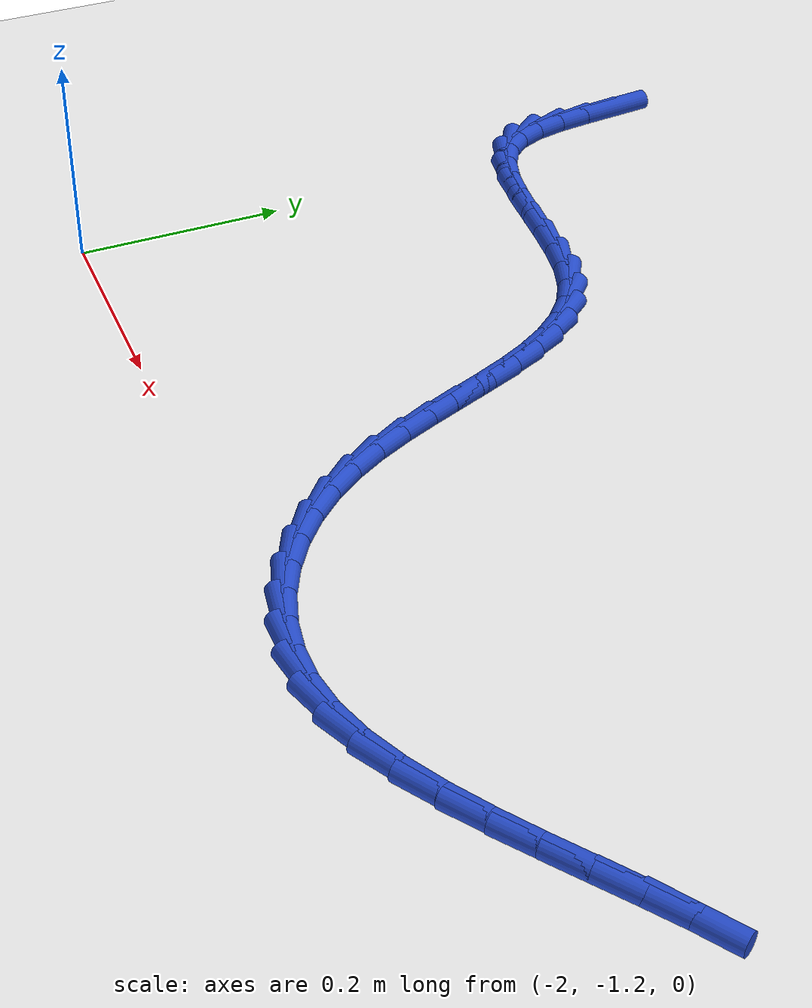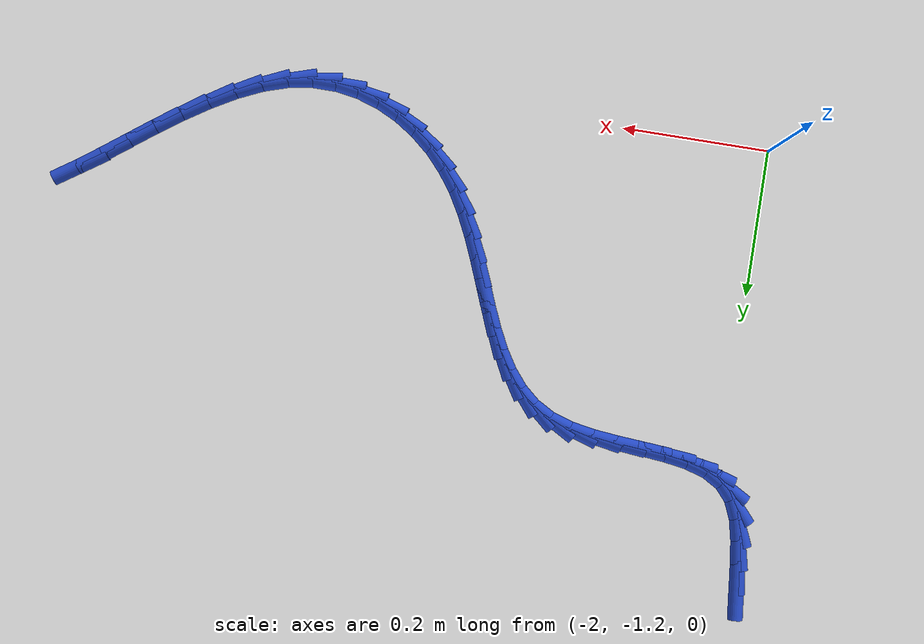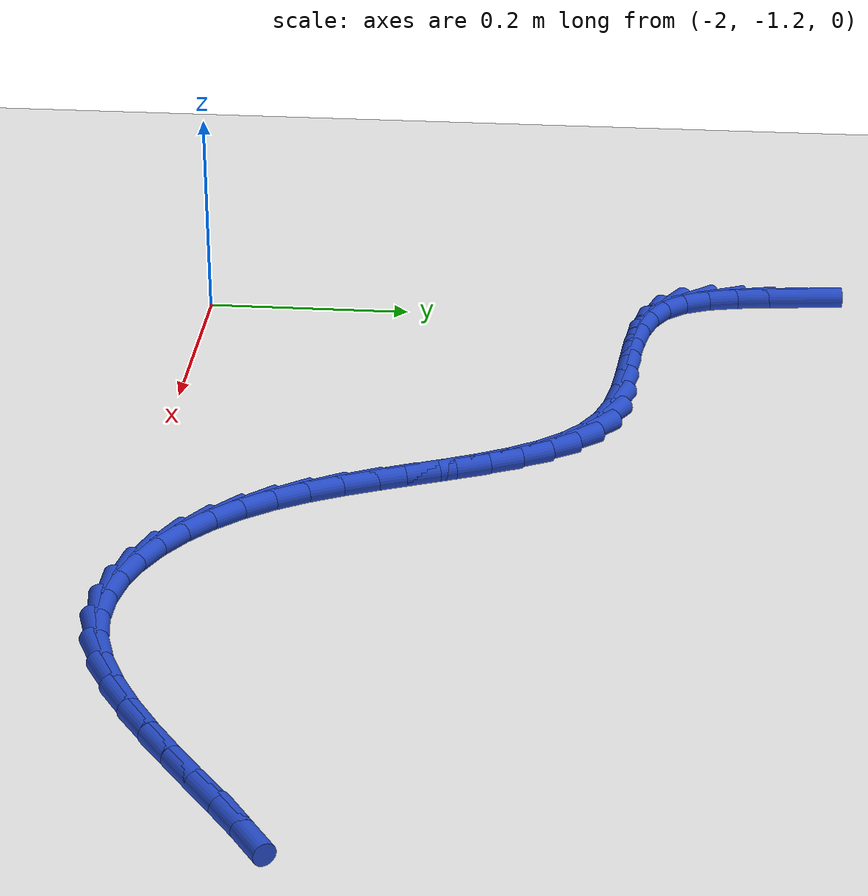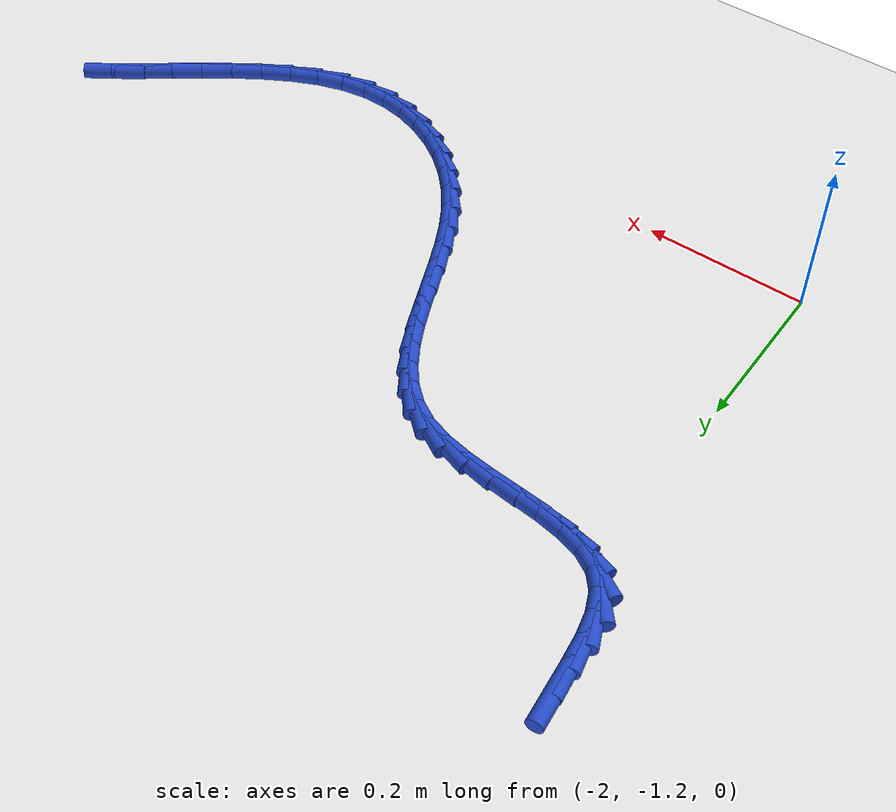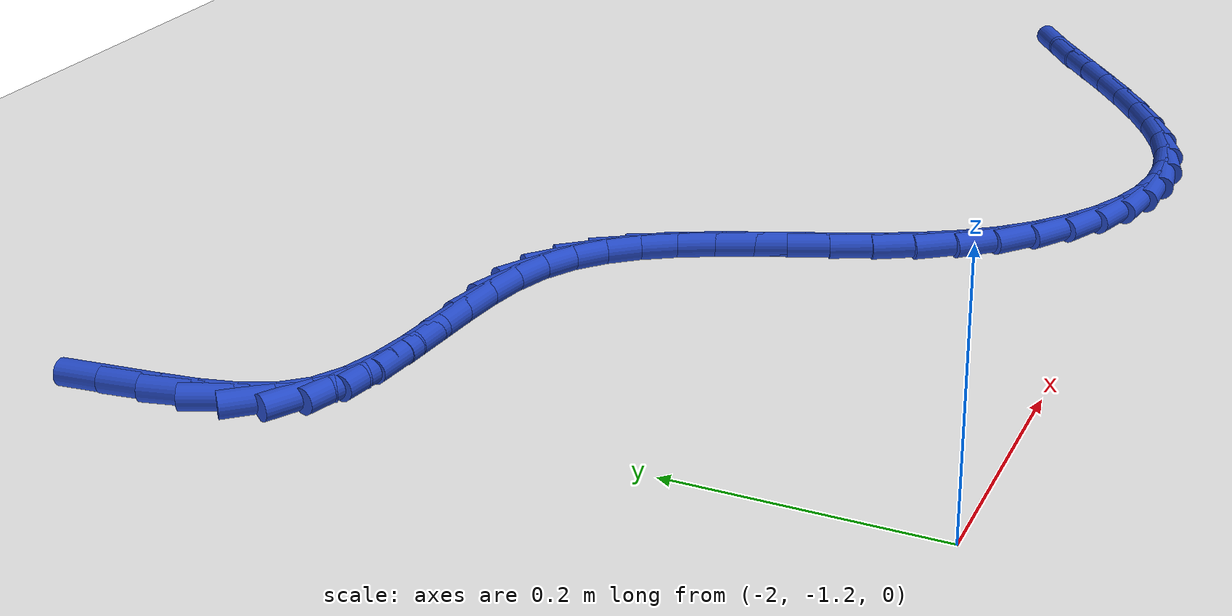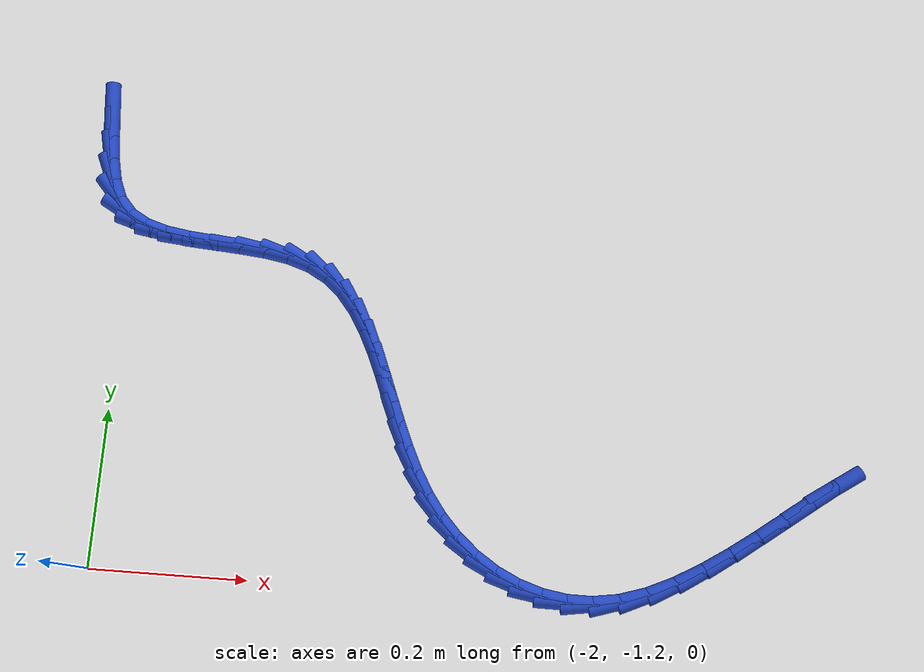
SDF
<sdf version="1.6">
 <world name="default">
  <model name="ground_plane">
   <static>1</static>
   <link name="link">
    <collision name="collision">
     <geometry><plane><normal>0 0 1</normal><size>100 100</size></plane></geometry>
     <surface><friction><ode><mu>100</mu><mu2>50</mu2></ode></friction></surface>
    </collision>
    <visual name="visual">
     <cast_shadows>0</cast_shadows>
     <geometry><plane><normal>0 0 1</normal><size>100 100</size></plane></geometry>
     <material>
      <script><uri>file://media/materials/scripts/gazebo.material</uri><name>Gazebo/WhiteGlow</name></script>
     </material>
    </visual>
   </link>
  </model>
  <model name="line">
   <link name="link_145">
    <pose>-2.0440664429187976 -0.6051107859606597 0.01 0 1.57 -1.4711831754574314</pose>
    <collision name="collision">
     <geometry><cylinder><radius>0.01</radius><length>0.08</length></cylinder></geometry>
    </collision>
    <visual name="visual">
     <material>
      <script><name>Gazebo/Blue</name><uri>file://media/materials/scripts/gazebo.material</uri></script>
     </material>
     <geometry><cylinder><radius>0.01</radius><length>0.08</length></cylinder></geometry>
    </visual>
   </link>
   <link name="link_146">
    <pose>-2.040724526774477 -0.6385486913073266 0.01 0 1.57 -1.4446692146444986</pose>
    <collision name="collision">
     <geometry><cylinder><radius>0.01</radius><length>0.08</length></cylinder></geometry>
    </collision>
    <visual name="visual">
     <material>
      <script><name>Gazebo/Blue</name><uri>file://media/materials/scripts/gazebo.material</uri></script>
     </material>
     <geometry><cylinder><radius>0.01</radius><length>0.08</length></cylinder></geometry>
    </visual>
   </link>
   <link name="link_147">
    <pose>-2.0366663396017075 -0.6705532696092178 0.01 0 1.57 -1.3515240249485478</pose>
    <collision name="collision">
     <geometry><cylinder><radius>0.01</radius><length>0.08</length></cylinder></geometry>
    </collision>
    <visual name="visual">
     <material>
      <script><name>Gazebo/Blue</name><uri>file://media/materials/scripts/gazebo.material</uri></script>
     </material>
     <geometry><cylinder><radius>0.01</radius><length>0.08</length></cylinder></geometry>
    </visual>
   </link>
   <link name="link_148">
    <pose>-2.0301826931210663 -0.6996467749841982 0.01 0 1.57 -1.1648595621627673</pose>
    <collision name="collision">
     <geometry><cylinder><radius>0.01</radius><length>0.08</length></cylinder></geometry>
    </collision>
    <visual name="visual">
     <material>
      <script><name>Gazebo/Blue</name><uri>file://media/materials/scripts/gazebo.material</uri></script>
     </material>
     <geometry><cylinder><radius>0.01</radius><length>0.08</length></cylinder></geometry>
    </visual>
   </link>
   <link name="link_149">
    <pose>-2.0195643990531273 -0.7243514615501329 0.01 0 1.57 -0.855051667119525</pose>
    <collision name="collision">
     <geometry><cylinder><radius>0.01</radius><length>0.08</length></cylinder></geometry>
    </collision>
    <visual name="visual">
     <material>
      <script><name>Gazebo/Blue</name><uri>file://media/materials/scripts/gazebo.material</uri></script>
     </material>
     <geometry><cylinder><radius>0.01</radius><length>0.08</length></cylinder></geometry>
    </visual>
   </link>
   <link name="link_150">
    <pose>-2.003146832519911 -0.7432316222642503 0.01 0 1.57 -0.5197034900409482</pose>
    <collision name="collision">
     <geometry><cylinder><radius>0.01</radius><length>0.08</length></cylinder></geometry>
    </collision>
    <visual name="visual">
     <material>
      <script><name>Gazebo/Blue</name><uri>file://media/materials/scripts/gazebo.material</uri></script>
     </material>
     <geometry><cylinder><radius>0.01</radius><length>0.08</length></cylinder></geometry>
    </visual>
   </link>
   <link name="link_151">
    <pose>-1.9806142718592905 -0.756124036558606 0.01 0 1.57 -0.2911077114056991</pose>
    <collision name="collision">
     <geometry><cylinder><radius>0.01</radius><length>0.08</length></cylinder></geometry>
    </collision>
    <visual name="visual">
     <material>
      <script><name>Gazebo/Blue</name><uri>file://media/materials/scripts/gazebo.material</uri></script>
     </material>
     <geometry><cylinder><radius>0.01</radius><length>0.08</length></cylinder></geometry>
    </visual>
   </link>
   <link name="link_152">
    <pose>-1.9532089723063728 -0.7643351997844707 0.01 0 1.57 -0.15759299802728446</pose>
    <collision name="collision">
     <geometry><cylinder><radius>0.01</radius><length>0.08</length></cylinder></geometry>
    </collision>
    <visual name="visual">
     <material>
      <script><name>Gazebo/Blue</name><uri>file://media/materials/scripts/gazebo.material</uri></script>
     </material>
     <geometry><cylinder><radius>0.01</radius><length>0.08</length></cylinder></geometry>
    </visual>
   </link>
   <link name="link_153">
    <pose>-1.9222598395936916 -0.7692533489516087 0.01 0 1.57 -0.0906137588480464</pose>
    <collision name="collision">
     <geometry><cylinder><radius>0.01</radius><length>0.08</length></cylinder></geometry>
    </collision>
    <visual name="visual">
     <material>
      <script><name>Gazebo/Blue</name><uri>file://media/materials/scripts/gazebo.material</uri></script>
     </material>
     <geometry><cylinder><radius>0.01</radius><length>0.08</length></cylinder></geometry>
    </visual>
   </link>
   <link name="link_154">
    <pose>-1.889095779453779 -0.7722667210697828 0.01 0 1.57 -0.07319721857196934</pose>
    <collision name="collision">
     <geometry><cylinder><radius>0.01</radius><length>0.08</length></cylinder></geometry>
    </collision>
    <visual name="visual">
     <material>
      <script><name>Gazebo/Blue</name><uri>file://media/materials/scripts/gazebo.material</uri></script>
     </material>
     <geometry><cylinder><radius>0.01</radius><length>0.08</length></cylinder></geometry>
    </visual>
   </link>
   <link name="link_155">
    <pose>-1.8550456976191674 -0.7747635531487569 0.01 0 1.57 -0.09989871547895696</pose>
    <collision name="collision">
     <geometry><cylinder><radius>0.01</radius><length>0.08</length></cylinder></geometry>
    </collision>
    <visual name="visual">
     <material>
      <script><name>Gazebo/Blue</name><uri>file://media/materials/scripts/gazebo.material</uri></script>
     </material>
     <geometry><cylinder><radius>0.01</radius><length>0.08</length></cylinder></geometry>
    </visual>
   </link>
   <link name="link_156">
    <pose>-1.8214384998223905 -0.7781320821982947 0.01 0 1.57 -0.17499051374921393</pose>
    <collision name="collision">
     <geometry><cylinder><radius>0.01</radius><length>0.08</length></cylinder></geometry>
    </collision>
    <visual name="visual">
     <material>
      <script><name>Gazebo/Blue</name><uri>file://media/materials/scripts/gazebo.material</uri></script>
     </material>
     <geometry><cylinder><radius>0.01</radius><length>0.08</length></cylinder></geometry>
    </visual>
   </link>
   <link name="link_157">
    <pose>-1.7896030917959795 -0.7837605452281595 0.01 0 1.57 -0.31227330798010927</pose>
    <collision name="collision">
     <geometry><cylinder><radius>0.01</radius><length>0.08</length></cylinder></geometry>
    </collision>
    <visual name="visual">
     <material>
      <script><name>Gazebo/Blue</name><uri>file://media/materials/scripts/gazebo.material</uri></script>
     </material>
     <geometry><cylinder><radius>0.01</radius><length>0.08</length></cylinder></geometry>
    </visual>
   </link>
   <link name="link_158">
    <pose>-1.7608683518557324 -0.7930371510729478 0.01 0 1.57 -0.5138665452206627</pose>
    <collision name="collision">
     <geometry><cylinder><radius>0.01</radius><length>0.08</length></cylinder></geometry>
    </collision>
    <visual name="visual">
     <material>
      <script><name>Gazebo/Blue</name><uri>file://media/materials/scripts/gazebo.material</uri></script>
     </material>
     <geometry><cylinder><radius>0.01</radius><length>0.08</length></cylinder></geometry>
    </visual>
   </link>
   <link name="link_159">
    <pose>-1.7361900766721106 -0.806966706320459 0.01 0 1.57 -0.7158099889967569</pose>
    <collision name="collision">
     <geometry><cylinder><radius>0.01</radius><length>0.08</length></cylinder></geometry>
    </collision>
    <visual name="visual">
     <material>
      <script><name>Gazebo/Blue</name><uri>file://media/materials/scripts/gazebo.material</uri></script>
     </material>
     <geometry><cylinder><radius>0.01</radius><length>0.08</length></cylinder></geometry>
    </visual>
   </link>
   <link name="link_160">
    <pose>-1.7152147931436519 -0.8252085293027943 0.01 0 1.57 -0.8856257170749956</pose>
    <collision name="collision">
     <geometry><cylinder><radius>0.01</radius><length>0.08</length></cylinder></geometry>
    </collision>
    <visual name="visual">
     <material>
      <script><name>Gazebo/Blue</name><uri>file://media/materials/scripts/gazebo.material</uri></script>
     </material>
     <geometry><cylinder><radius>0.01</radius><length>0.08</length></cylinder></geometry>
    </visual>
   </link>
   <link name="link_161">
    <pose>-1.6973019809127088 -0.84712695047384 0.01 0 1.57 -1.0153358224507827</pose>
    <collision name="collision">
     <geometry><cylinder><radius>0.01</radius><length>0.08</length></cylinder></geometry>
    </collision>
    <visual name="visual">
     <material>
      <script><name>Gazebo/Blue</name><uri>file://media/materials/scripts/gazebo.material</uri></script>
     </material>
     <geometry><cylinder><radius>0.01</radius><length>0.08</length></cylinder></geometry>
    </visual>
   </link>
   <link name="link_162">
    <pose>-1.6818111196216317 -0.8720863002874808 0.01 0 1.57 -1.1063560005590152</pose>
    <collision name="collision">
     <geometry><cylinder><radius>0.01</radius><length>0.08</length></cylinder></geometry>
    </collision>
    <visual name="visual">
     <material>
      <script><name>Gazebo/Blue</name><uri>file://media/materials/scripts/gazebo.material</uri></script>
     </material>
     <geometry><cylinder><radius>0.01</radius><length>0.08</length></cylinder></geometry>
    </visual>
   </link>
   <link name="link_163">
    <pose>-1.6681016889127716 -0.8994509091976026 0.01 0 1.57 -1.1635165456020855</pose>
    <collision name="collision">
     <geometry><cylinder><radius>0.01</radius><length>0.08</length></cylinder></geometry>
    </collision>
    <visual name="visual">
     <material>
      <script><name>Gazebo/Blue</name><uri>file://media/materials/scripts/gazebo.material</uri></script>
     </material>
     <geometry><cylinder><radius>0.01</radius><length>0.08</length></cylinder></geometry>
    </visual>
   </link>
   <link name="link_164">
    <pose>-1.6555331684284809 -0.9285851076580911 0.01 0 1.57 -1.1914045340716606</pose>
    <collision name="collision">
     <geometry><cylinder><radius>0.01</radius><length>0.08</length></cylinder></geometry>
    </collision>
    <visual name="visual">
     <material>
      <script><name>Gazebo/Blue</name><uri>file://media/materials/scripts/gazebo.material</uri></script>
     </material>
     <geometry><cylinder><radius>0.01</radius><length>0.08</length></cylinder></geometry>
    </visual>
   </link>
   <link name="link_165">
    <pose>-1.643465037811109 -0.958853226122831 0.01 0 1.57 -1.1930469514371933</pose>
    <collision name="collision">
     <geometry><cylinder><radius>0.01</radius><length>0.08</length></cylinder></geometry>
    </collision>
    <visual name="visual">
     <material>
      <script><name>Gazebo/Blue</name><uri>file://media/materials/scripts/gazebo.material</uri></script>
     </material>
     <geometry><cylinder><radius>0.01</radius><length>0.08</length></cylinder></geometry>
    </visual>
   </link>
   <link name="link_166">
    <pose>-1.6312567767030088 -0.9896195950457083 0.01 0 1.57 -1.1697110822991574</pose>
    <collision name="collision">
     <geometry><cylinder><radius>0.01</radius><length>0.08</length></cylinder></geometry>
    </collision>
    <visual name="visual">
     <material>
      <script><name>Gazebo/Blue</name><uri>file://media/materials/scripts/gazebo.material</uri></script>
     </material>
     <geometry><cylinder><radius>0.01</radius><length>0.08</length></cylinder></geometry>
    </visual>
   </link>
   <link name="link_167">
    <pose>-1.6182678647465303 -1.0202485448806085 0.01 0 1.57 -1.121120685588752</pose>
    <collision name="collision">
     <geometry><cylinder><radius>0.01</radius><length>0.08</length></cylinder></geometry>
    </collision>
    <visual name="visual">
     <material>
      <script><name>Gazebo/Blue</name><uri>file://media/materials/scripts/gazebo.material</uri></script>
     </material>
     <geometry><cylinder><radius>0.01</radius><length>0.08</length></cylinder></geometry>
    </visual>
   </link>
   <link name="link_168">
    <pose>-1.6038577815840251 -1.0501044060814169 0.01 0 1.57 -1.0459373882455891</pose>
    <collision name="collision">
     <geometry><cylinder><radius>0.01</radius><length>0.08</length></cylinder></geometry>
    </collision>
    <visual name="visual">
     <material>
      <script><name>Gazebo/Blue</name><uri>file://media/materials/scripts/gazebo.material</uri></script>
     </material>
     <geometry><cylinder><radius>0.01</radius><length>0.08</length></cylinder></geometry>
    </visual>
   </link>
   <link name="link_169">
    <pose>-1.5873860068578438 -1.0785515091020188 0.01 0 1.57 -0.9436249586429989</pose>
    <collision name="collision">
     <geometry><cylinder><radius>0.01</radius><length>0.08</length></cylinder></geometry>
    </collision>
    <visual name="visual">
     <material>
      <script><name>Gazebo/Blue</name><uri>file://media/materials/scripts/gazebo.material</uri></script>
     </material>
     <geometry><cylinder><radius>0.01</radius><length>0.08</length></cylinder></geometry>
    </visual>
   </link>
   <link name="link_170">
    <pose>-1.568243754590191 -1.1049622191065958 0.01 0 1.57 -0.8278197202941777</pose>
    <collision name="collision">
     <geometry><cylinder><radius>0.01</radius><length>0.08</length></cylinder></geometry>
    </collision>
    <visual name="visual">
     <material>
      <script><name>Gazebo/Blue</name><uri>file://media/materials/scripts/gazebo.material</uri></script>
     </material>
     <geometry><cylinder><radius>0.01</radius><length>0.08</length></cylinder></geometry>
    </visual>
   </link>
   <link name="link_171">
    <pose>-1.5463160849542557 -1.1288339363402808 0.01 0 1.57 -0.7082044843063268</pose>
    <collision name="collision">
     <geometry><cylinder><radius>0.01</radius><length>0.08</length></cylinder></geometry>
    </collision>
    <visual name="visual">
     <material>
      <script><name>Gazebo/Blue</name><uri>file://media/materials/scripts/gazebo.material</uri></script>
     </material>
     <geometry><cylinder><radius>0.01</radius><length>0.08</length></cylinder></geometry>
    </visual>
   </link>
   <link name="link_172">
    <pose>-1.5218781830312857 -1.1497628353311775 0.01 0 1.57 -0.583054577492486</pose>
    <collision name="collision">
     <geometry><cylinder><radius>0.01</radius><length>0.08</length></cylinder></geometry>
    </collision>
    <visual name="visual">
     <material>
      <script><name>Gazebo/Blue</name><uri>file://media/materials/scripts/gazebo.material</uri></script>
     </material>
     <geometry><cylinder><radius>0.01</radius><length>0.08</length></cylinder></geometry>
    </visual>
   </link>
   <link name="link_173">
    <pose>-1.4952158619259666 -1.1673477814773436 0.01 0 1.57 -0.4506811683502191</pose>
    <collision name="collision">
     <geometry><cylinder><radius>0.01</radius><length>0.08</length></cylinder></geometry>
    </collision>
    <visual name="visual">
     <material>
      <script><name>Gazebo/Blue</name><uri>file://media/materials/scripts/gazebo.material</uri></script>
     </material>
     <geometry><cylinder><radius>0.01</radius><length>0.08</length></cylinder></geometry>
    </visual>
   </link>
   <link name="link_174">
    <pose>-1.4666149347429849 -1.1811876401768395 0.01 0 1.57 -0.31007608036072054</pose>
    <collision name="collision">
     <geometry><cylinder><radius>0.01</radius><length>0.08</length></cylinder></geometry>
    </collision>
    <visual name="visual">
     <material>
      <script><name>Gazebo/Blue</name><uri>file://media/materials/scripts/gazebo.material</uri></script>
     </material>
     <geometry><cylinder><radius>0.01</radius><length>0.08</length></cylinder></geometry>
    </visual>
   </link>
   <link name="link_175">
    <pose>-1.436361214587026 -1.190881276827724 0.01 0 1.57 -0.16133580426411429</pose>
    <collision name="collision">
     <geometry><cylinder><radius>0.01</radius><length>0.08</length></cylinder></geometry>
    </collision>
    <visual name="visual">
     <material>
      <script><name>Gazebo/Blue</name><uri>file://media/materials/scripts/gazebo.material</uri></script>
     </material>
     <geometry><cylinder><radius>0.01</radius><length>0.08</length></cylinder></geometry>
    </visual>
   </link>
   <link name="link_176">
    <pose>-1.404740514562776 -1.1960275568280565 0.01 0 1.57 -0.006048166527964421</pose>
    <collision name="collision">
     <geometry><cylinder><radius>0.01</radius><length>0.08</length></cylinder></geometry>
    </collision>
    <visual name="visual">
     <material>
      <script><name>Gazebo/Blue</name><uri>file://media/materials/scripts/gazebo.material</uri></script>
     </material>
     <geometry><cylinder><radius>0.01</radius><length>0.08</length></cylinder></geometry>
    </visual>
   </link>
   <link name="link_177">
    <pose>-1.3720386477749196 -1.1962253455758958 0.01 0 1.57 0.15260320904835697</pose>
    <collision name="collision">
     <geometry><cylinder><radius>0.01</radius><length>0.08</length></cylinder></geometry>
    </collision>
    <visual name="visual">
     <material>
      <script><name>Gazebo/Blue</name><uri>file://media/materials/scripts/gazebo.material</uri></script>
     </material>
     <geometry><cylinder><radius>0.01</radius><length>0.08</length></cylinder></geometry>
    </visual>
   </link>
   <link name="link_178">
    <pose>-1.3385414273281437 -1.191073508469302 0.01 0 1.57 0.30643836537034636</pose>
    <collision name="collision">
     <geometry><cylinder><radius>0.01</radius><length>0.08</length></cylinder></geometry>
    </collision>
    <visual name="visual">
     <material>
      <script><name>Gazebo/Blue</name><uri>file://media/materials/scripts/gazebo.material</uri></script>
     </material>
     <geometry><cylinder><radius>0.01</radius><length>0.08</length></cylinder></geometry>
    </visual>
   </link>
   <link name="link_179">
    <pose>-1.3045364324391737 -1.180314162453006 0.01 0 1.57 0.42904479322002015</pose>
    <collision name="collision">
     <geometry><cylinder><radius>0.01</radius><length>0.08</length></cylinder></geometry>
    </collision>
    <visual name="visual">
     <material>
      <script><name>Gazebo/Blue</name><uri>file://media/materials/scripts/gazebo.material</uri></script>
     </material>
     <geometry><cylinder><radius>0.01</radius><length>0.08</length></cylinder></geometry>
    </visual>
   </link>
   <link name="link_180">
    <pose>-1.2703232429690552 -1.1646628116751407 0.01 0 1.57 0.5175436508867145</pose>
    <collision name="collision">
     <geometry><cylinder><radius>0.01</radius><length>0.08</length></cylinder></geometry>
    </collision>
    <visual name="visual">
     <material>
      <script><name>Gazebo/Blue</name><uri>file://media/materials/scripts/gazebo.material</uri></script>
     </material>
     <geometry><cylinder><radius>0.01</radius><length>0.08</length></cylinder></geometry>
    </visual>
   </link>
   <link name="link_181">
    <pose>-1.2362064317621166 -1.1452399473750419 0.01 0 1.57 0.5796471660618034</pose>
    <collision name="collision">
     <geometry><cylinder><radius>0.01</radius><length>0.08</length></cylinder></geometry>
    </collision>
    <visual name="visual">
     <material>
      <script><name>Gazebo/Blue</name><uri>file://media/materials/scripts/gazebo.material</uri></script>
     </material>
     <geometry><cylinder><radius>0.01</radius><length>0.08</length></cylinder></geometry>
    </visual>
   </link>
   <link name="link_182">
    <pose>-1.2024905880360337 -1.1231673888546112 0.01 0 1.57 0.6206837745524185</pose>
    <collision name="collision">
     <geometry><cylinder><radius>0.01</radius><length>0.08</length></cylinder></geometry>
    </collision>
    <visual name="visual">
     <material>
      <script><name>Gazebo/Blue</name><uri>file://media/materials/scripts/gazebo.material</uri></script>
     </material>
     <geometry><cylinder><radius>0.01</radius><length>0.08</length></cylinder></geometry>
    </visual>
   </link>
   <link name="link_183">
    <pose>-1.1694803010084833 -1.09956695541575 0.01 0 1.57 0.6436287604449197</pose>
    <collision name="collision">
     <geometry><cylinder><radius>0.01</radius><length>0.08</length></cylinder></geometry>
    </collision>
    <visual name="visual">
     <material>
      <script><name>Gazebo/Blue</name><uri>file://media/materials/scripts/gazebo.material</uri></script>
     </material>
     <geometry><cylinder><radius>0.01</radius><length>0.08</length></cylinder></geometry>
    </visual>
   </link>
   <link name="link_184">
    <pose>-1.1374801598971402 -1.075560466360359 0.01 0 1.57 0.6492466543869543</pose>
    <collision name="collision">
     <geometry><cylinder><radius>0.01</radius><length>0.08</length></cylinder></geometry>
    </collision>
    <visual name="visual">
     <material>
      <script><name>Gazebo/Blue</name><uri>file://media/materials/scripts/gazebo.material</uri></script>
     </material>
     <geometry><cylinder><radius>0.01</radius><length>0.08</length></cylinder></geometry>
    </visual>
   </link>
   <link name="link_185">
    <pose>-1.1067947539196807 -1.0522697409903403 0.01 0 1.57 0.6358296473401076</pose>
    <collision name="collision">
     <geometry><cylinder><radius>0.01</radius><length>0.08</length></cylinder></geometry>
    </collision>
    <visual name="visual">
     <material>
      <script><name>Gazebo/Blue</name><uri>file://media/materials/scripts/gazebo.material</uri></script>
     </material>
     <geometry><cylinder><radius>0.01</radius><length>0.08</length></cylinder></geometry>
    </visual>
   </link>
   <link name="link_186">
    <pose>-1.0777286722937807 -1.0308165986075943 0.01 0 1.57 0.598109884514885</pose>
    <collision name="collision">
     <geometry><cylinder><radius>0.01</radius><length>0.08</length></cylinder></geometry>
    </collision>
    <visual name="visual">
     <material>
      <script><name>Gazebo/Blue</name><uri>file://media/materials/scripts/gazebo.material</uri></script>
     </material>
     <geometry><cylinder><radius>0.01</radius><length>0.08</length></cylinder></geometry>
    </visual>
   </link>
  </model>
 </world>
</sdf>
